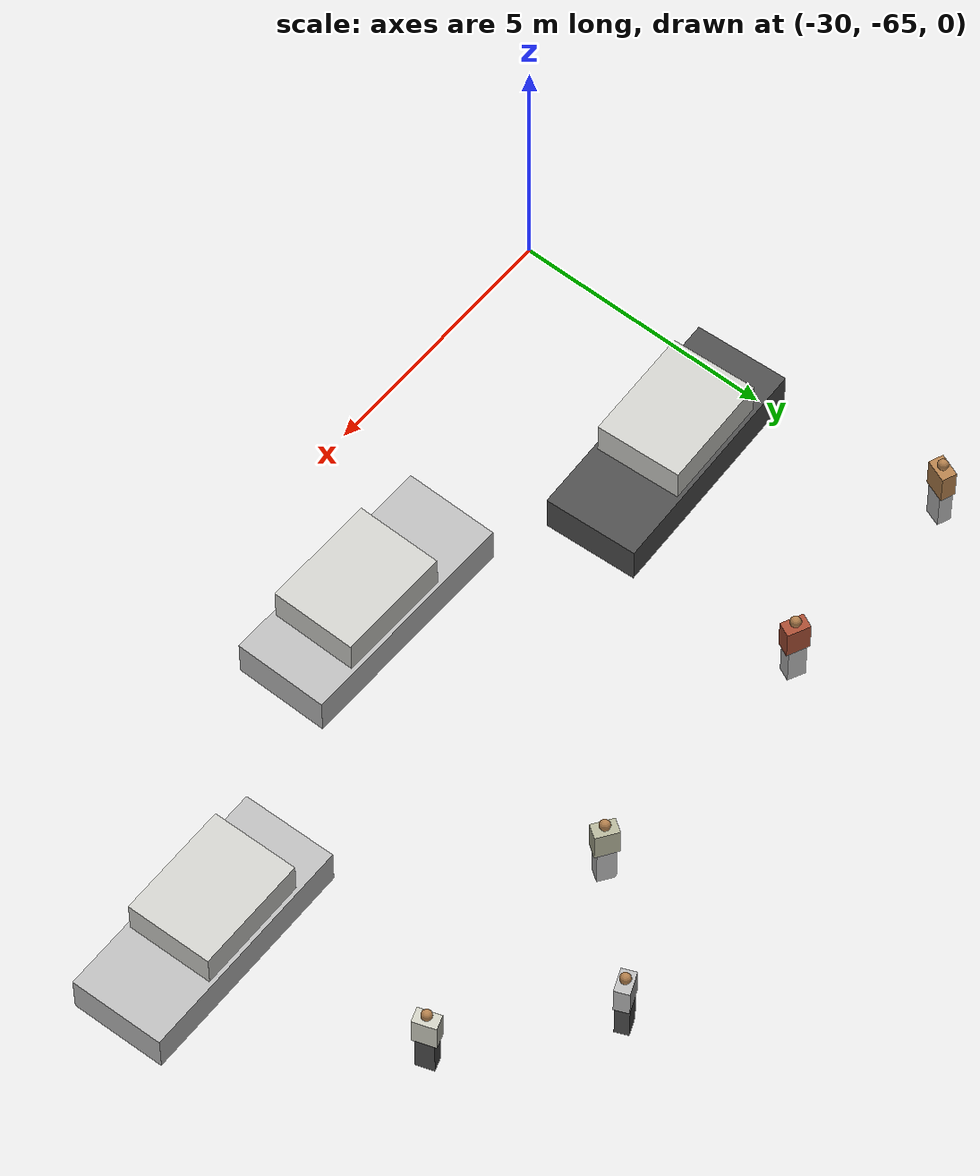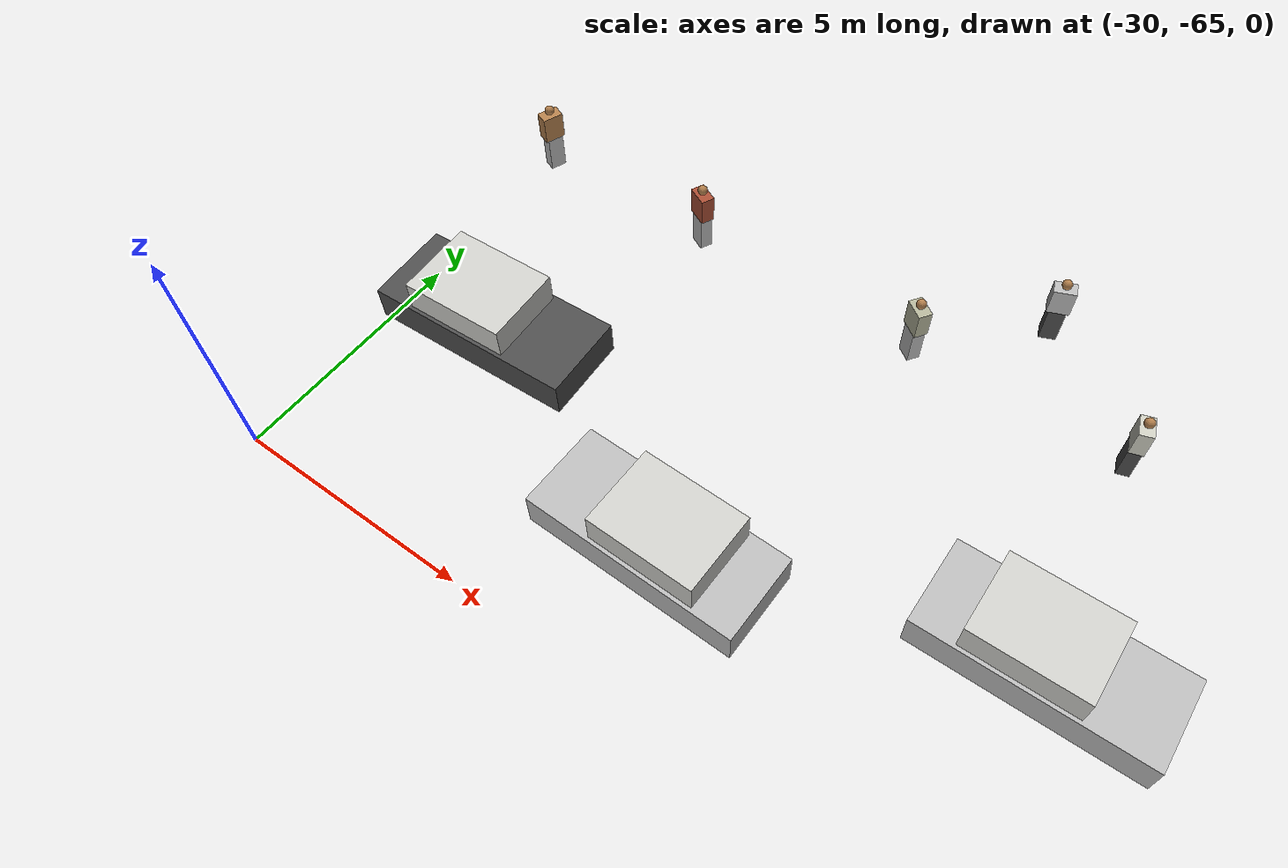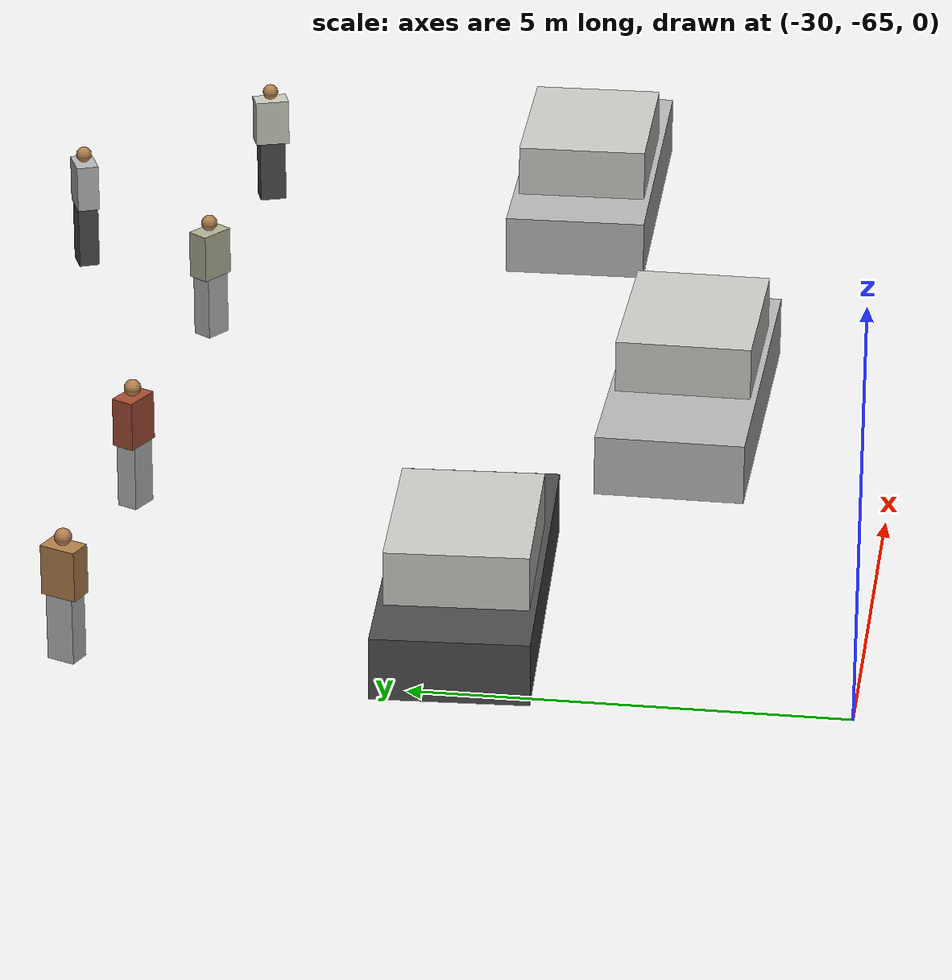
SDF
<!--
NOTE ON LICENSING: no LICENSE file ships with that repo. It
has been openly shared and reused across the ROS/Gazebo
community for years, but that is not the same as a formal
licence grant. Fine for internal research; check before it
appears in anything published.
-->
<sdf version="1.6">
 <world name="mcity">
  <include><uri>model://sun</uri></include>
  <physics type="ode">
   <max_step_size>0.001</max_step_size>
   <real_time_factor>1</real_time_factor>
   <real_time_update_rate>1000</real_time_update_rate>
  </physics>
  <model name="person_1">
   <static>true</static>
   <pose>-16.5 -56.14 0 0 0 1.9</pose>
   <link name="l">
    <collision name="c">
     <pose>0 0 0.558 0 0 0</pose>
     <geometry><box><size>0.34 0.26 0.80</size></box></geometry>
    </collision>
    <visual name="legs">
     <pose>0 0 0.558 0 0 0</pose>
     <geometry><box><size>0.34 0.26 0.80</size></box></geometry>
     <material>
      <script><uri>file://media/materials/scripts/gazebo.material</uri><name>Gazebo/Road</name></script>
     </material>
    </visual>
    <visual name="torso">
     <pose>0 0 1.258 0 0 0</pose>
     <geometry><box><size>0.44 0.28 0.60</size></box></geometry>
     <material>
      <script><uri>file://media/materials/scripts/gazebo.material</uri><name>Gazebo/PaintedWall</name></script>
     </material>
    </visual>
    <visual name="head">
     <pose>0 0 1.658 0 0 0</pose>
     <geometry><sphere><radius>0.10</radius></sphere></geometry>
     <material>
      <script><uri>file://media/materials/scripts/gazebo.material</uri><name>Gazebo/WoodPallet</name></script>
     </material>
    </visual>
   </link>
  </model>
  <model name="person_2">
   <static>true</static>
   <pose>-21.0 -56.14 0 0 0 -0.6</pose>
   <link name="l">
    <collision name="c">
     <pose>0 0 0.558 0 0 0</pose>
     <geometry><box><size>0.34 0.26 0.80</size></box></geometry>
    </collision>
    <visual name="legs">
     <pose>0 0 0.558 0 0 0</pose>
     <geometry><box><size>0.34 0.26 0.80</size></box></geometry>
     <material>
      <script><uri>file://media/materials/scripts/gazebo.material</uri><name>Gazebo/Motorway</name></script>
     </material>
    </visual>
    <visual name="torso">
     <pose>0 0 1.258 0 0 0</pose>
     <geometry><box><size>0.44 0.28 0.60</size></box></geometry>
     <material>
      <script><uri>file://media/materials/scripts/gazebo.material</uri><name>Gazebo/Residential</name></script>
     </material>
    </visual>
    <visual name="head">
     <pose>0 0 1.658 0 0 0</pose>
     <geometry><sphere><radius>0.10</radius></sphere></geometry>
     <material>
      <script><uri>file://media/materials/scripts/gazebo.material</uri><name>Gazebo/WoodPallet</name></script>
     </material>
    </visual>
   </link>
  </model>
  <model name="person_3">
   <static>true</static>
   <pose>-26.0 -56.14 0 0 0 2.7</pose>
   <link name="l">
    <collision name="c">
     <pose>0 0 0.558 0 0 0</pose>
     <geometry><box><size>0.34 0.26 0.80</size></box></geometry>
    </collision>
    <visual name="legs">
     <pose>0 0 0.558 0 0 0</pose>
     <geometry><box><size>0.34 0.26 0.80</size></box></geometry>
     <material>
      <script><uri>file://media/materials/scripts/gazebo.material</uri><name>Gazebo/Steps</name></script>
     </material>
    </visual>
    <visual name="torso">
     <pose>0 0 1.258 0 0 0</pose>
     <geometry><box><size>0.44 0.28 0.60</size></box></geometry>
     <material>
      <script><uri>file://media/materials/scripts/gazebo.material</uri><name>Gazebo/Bricks</name></script>
     </material>
    </visual>
    <visual name="head">
     <pose>0 0 1.658 0 0 0</pose>
     <geometry><sphere><radius>0.10</radius></sphere></geometry>
     <material>
      <script><uri>file://media/materials/scripts/gazebo.material</uri><name>Gazebo/WoodPallet</name></script>
     </material>
    </visual>
   </link>
  </model>
  <model name="person_4">
   <static>true</static>
   <pose>-19.0 -54.12 0 0 0 0.4</pose>
   <link name="l">
    <collision name="c">
     <pose>0 0 0.558 0 0 0</pose>
     <geometry><box><size>0.34 0.26 0.80</size></box></geometry>
    </collision>
    <visual name="legs">
     <pose>0 0 0.558 0 0 0</pose>
     <geometry><box><size>0.34 0.26 0.80</size></box></geometry>
     <material>
      <script><uri>file://media/materials/scripts/gazebo.material</uri><name>Gazebo/Road</name></script>
     </material>
    </visual>
    <visual name="torso">
     <pose>0 0 1.258 0 0 0</pose>
     <geometry><box><size>0.44 0.28 0.60</size></box></geometry>
     <material>
      <script><uri>file://media/materials/scripts/gazebo.material</uri><name>Gazebo/Steps</name></script>
     </material>
    </visual>
    <visual name="head">
     <pose>0 0 1.658 0 0 0</pose>
     <geometry><sphere><radius>0.10</radius></sphere></geometry>
     <material>
      <script><uri>file://media/materials/scripts/gazebo.material</uri><name>Gazebo/WoodPallet</name></script>
     </material>
    </visual>
   </link>
  </model>
  <model name="person_5">
   <static>true</static>
   <pose>-30.0 -56.14 0 0 0 1.2</pose>
   <link name="l">
    <collision name="c">
     <pose>0 0 0.558 0 0 0</pose>
     <geometry><box><size>0.34 0.26 0.80</size></box></geometry>
    </collision>
    <visual name="legs">
     <pose>0 0 0.558 0 0 0</pose>
     <geometry><box><size>0.34 0.26 0.80</size></box></geometry>
     <material>
      <script><uri>file://media/materials/scripts/gazebo.material</uri><name>Gazebo/Motorway</name></script>
     </material>
    </visual>
    <visual name="torso">
     <pose>0 0 1.258 0 0 0</pose>
     <geometry><box><size>0.44 0.28 0.60</size></box></geometry>
     <material>
      <script><uri>file://media/materials/scripts/gazebo.material</uri><name>Gazebo/Wood</name></script>
     </material>
    </visual>
    <visual name="head">
     <pose>0 0 1.658 0 0 0</pose>
     <geometry><sphere><radius>0.10</radius></sphere></geometry>
     <material>
      <script><uri>file://media/materials/scripts/gazebo.material</uri><name>Gazebo/WoodPallet</name></script>
     </material>
    </visual>
   </link>
  </model>
  <model name="car_1">
   <static>true</static>
   <pose>-16.0 -60.40 0 0 0 0.02</pose>
   <link name="l">
    <collision name="c">
     <pose>0 0 0.375 0 0 0</pose>
     <geometry><box><size>4.4 1.8 0.75</size></box></geometry>
    </collision>
    <visual name="body">
     <pose>0 0 0.375 0 0 0</pose>
     <geometry><box><size>4.4 1.8 0.75</size></box></geometry>
     <material>
      <script><uri>file://media/materials/scripts/gazebo.material</uri><name>Gazebo/PioneerBody</name></script>
     </material>
    </visual>
    <visual name="cabin">
     <pose>-0.25 0 1.075 0 0 0</pose>
     <geometry><box><size>2.2 1.65 0.65</size></box></geometry>
     <material>
      <script><uri>file://media/materials/scripts/gazebo.material</uri><name>Gazebo/CeilingTiled</name></script>
     </material>
    </visual>
   </link>
  </model>
  <model name="car_2">
   <static>true</static>
   <pose>-22.5 -62.40 0 0 0 3.13</pose>
   <link name="l">
    <collision name="c">
     <pose>0 0 0.375 0 0 0</pose>
     <geometry><box><size>4.4 1.8 0.75</size></box></geometry>
    </collision>
    <visual name="body">
     <pose>0 0 0.375 0 0 0</pose>
     <geometry><box><size>4.4 1.8 0.75</size></box></geometry>
     <material>
      <script><uri>file://media/materials/scripts/gazebo.material</uri><name>Gazebo/Motorway</name></script>
     </material>
    </visual>
    <visual name="cabin">
     <pose>-0.25 0 1.075 0 0 0</pose>
     <geometry><box><size>2.2 1.65 0.65</size></box></geometry>
     <material>
      <script><uri>file://media/materials/scripts/gazebo.material</uri><name>Gazebo/CeilingTiled</name></script>
     </material>
    </visual>
   </link>
  </model>
  <model name="car_3">
   <static>true</static>
   <pose>-28.0 -60.40 0 0 0 0.05</pose>
   <link name="l">
    <collision name="c">
     <pose>0 0 0.375 0 0 0</pose>
     <geometry><box><size>4.4 1.8 0.75</size></box></geometry>
    </collision>
    <visual name="body">
     <pose>0 0 0.375 0 0 0</pose>
     <geometry><box><size>4.4 1.8 0.75</size></box></geometry>
     <material>
      <script><uri>file://media/materials/scripts/gazebo.material</uri><name>Gazebo/Road</name></script>
     </material>
    </visual>
    <visual name="cabin">
     <pose>-0.25 0 1.075 0 0 0</pose>
     <geometry><box><size>2.2 1.65 0.65</size></box></geometry>
     <material>
      <script><uri>file://media/materials/scripts/gazebo.material</uri><name>Gazebo/CeilingTiled</name></script>
     </material>
    </visual>
   </link>
  </model>
  <scene>
   <ambient>0.55 0.55 0.55 1</ambient>
   <background>0.72 0.77 0.83 1</background>
   <shadows>false</shadows>
  </scene>
 </world>
</sdf>
